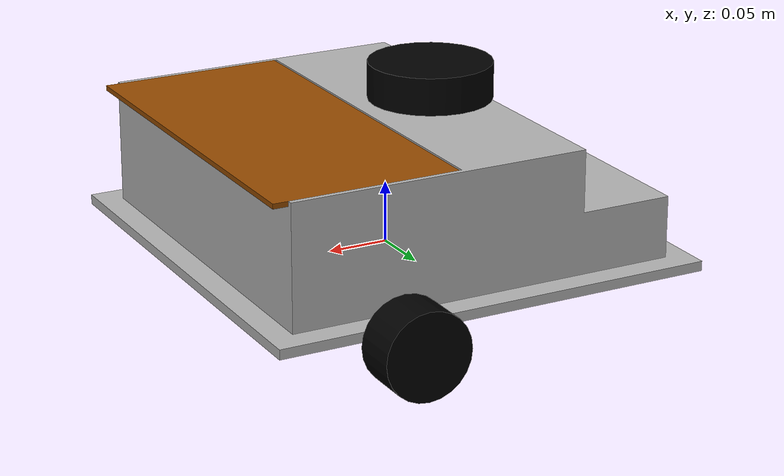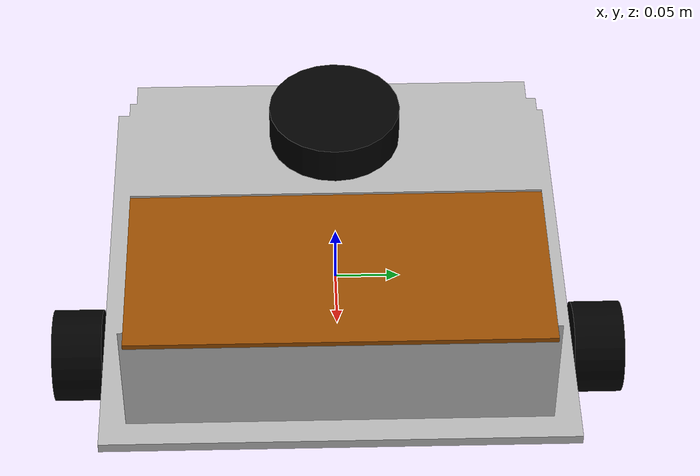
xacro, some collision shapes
<?xml version="1.0"?>
<robot xmlns:xacro="http://www.ros.org/wiki/xacro" name="libbot_bringup">

    <!-- Colours -->
    <xacro:include filename="materials.xacro" />

    <!-- Main robot structure -->
    <xacro:include filename="libbot_core.xacro" />

    <!-- Robot movement control -->
    <xacro:include filename="libbot_gazebo_control.xacro" />

    <!-- Sensors -->
    <gazebo>
        <plugin
            filename="gz-sim-sensors-system"
            name="gz::sim::systems::Sensors">
            <render_engine>ogre2</render_engine>
        </plugin>

        <plugin filename="gz-sim-imu-system"
                name="gz::sim::systems::Imu">
        </plugin>
    </gazebo>

    <!-- Lidar sensor -->
    <xacro:include filename="lidar.xacro" />

    <!-- IMU sensor -->
    <xacro:include filename="imu.xacro" />

</robot>

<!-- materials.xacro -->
<robot name="libbot_bringup" xmlns:xacro="http://www.ros.org/wiki/xacro">

    <!-- Material declarations -->
    <material name="black">
        <color rgba="0 0 0 1" />
    </material>

    <material name="sap">
        <color rgba="0.035 0.301 0.110 1.000" />
    </material>

    <material name="red">
        <color rgba="0.700 0.000 0.000 1.000" />
    </material>

    <material name="brown">
        <color rgba="0.588 0.294 0.000 1.000" />
    </material>

    <material name="silver">
        <color rgba="0.700 0.700 0.700 1.000" />
    </material>

</robot>

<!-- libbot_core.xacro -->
<robot xmlns:xacro="http://www.ros.org/wiki/xacro" name="libbot_bringup">

    <!-- Constants -->
    <xacro:property name="chassis_length" value="0.36" />
    <xacro:property name="chassis_breadth" value="0.36" />
    <xacro:property name="chassis_height" value="0.008" />

    <xacro:property name="payload_mass" value="4.0" />
    <xacro:property name="frame_mass" value="2.0" />

    <xacro:property name="wheel_length" value="0.038" />
    <xacro:property name="wheel_radius" value="0.035" />
    <xacro:property name="chassis_wheel_offset_height" value="0.01" />
    <xacro:property name="chassis_wheel_offset" value="0.1" />
    <xacro:property name="wheel_mass" value="0.1" />

    <xacro:property name="caster_pos_x" value="-0.1" />
    <xacro:property name="caster_pos_y" value="0.005" />

    <xacro:property name="door_length" value="${0.320-0.008}" />
    <xacro:property name="door_breadth" value="0.150" />
    <xacro:property name="door_height" value="0.004" />
    <xacro:property name="door_pos" value="${0.022} 0 ${0.11}" />
    <xacro:property name="door_joint_offset" value="${door_breadth/2}" />
    <xacro:property name="door_mass" value="0.050" />

    <!-- Wheel xacro -->
    <xacro:macro name="wheel" params="prefix reflect_x reflect_y">

        <link name="${prefix}_wheel_link">

            <visual>
                <geometry>
                    <cylinder radius="${wheel_radius}" length="${wheel_length}" />
                </geometry>
                <material name="black" />
            </visual>
            <collision>
                <geometry>
                    <cylinder radius="${wheel_radius}" length="${wheel_length}" />
                </geometry>
            </collision>
            <inertial>
                <mass value="${wheel_mass}" />
                <origin xyz="0 0 0" rpy="${pi/2} 0 0" />
                <inertia
                    ixx="${1/12*wheel_mass*(3*(wheel_radius*wheel_radius)+(wheel_length*wheel_length))}"
                    iyy="${1/12*wheel_mass*(3*(wheel_radius*wheel_radius)+(wheel_length*wheel_length))}"
                    izz="${1/2*wheel_mass*(wheel_radius*wheel_radius)}"
                    ixy="0.0" iyz="0.0" ixz="0.0" />
            </inertial>

        </link>

        <joint name="${prefix}_wheel_joint" type="continuous">

            <parent link="base_link" />
            <child link="${prefix}_wheel_link" />
            <origin
                xyz="${-reflect_x*((chassis_length/2)-chassis_wheel_offset)} ${-reflect_y*((chassis_breadth/2 + (wheel_length/2)))} 0.0"
                rpy="${pi/2} 0 0" />
            <axis xyz="0.0 0.0 -1.0" />
            <limit effort="0.56" velocity="12.56" />

        </joint>

    </xacro:macro>

    <!-- Frame -->
    <link name="base_footprint">
    </link>
    <link name="base_link">

        <visual>
            <origin
                xyz="${(chassis_length/2)} ${-(chassis_breadth/2)} ${chassis_height/2}"
                rpy="0 0 ${pi/2}" />
            <geometry>
                <mesh filename="file://$(find libbot_bringup)/urdf/meshes/chassis_frame.stl" />
            </geometry>
            <material name="silver" />
        </visual>
        <collision>
            <origin
                xyz="${(chassis_length/2)} ${-(chassis_breadth/2)} ${chassis_height/2}"
                rpy="0 0 ${pi/2}" />
            <geometry>
                <mesh filename="file://$(find libbot_bringup)/urdf/meshes/chassis_frame.stl" />
            </geometry>
        </collision>
        <inertial>
            <origin xyz="0 0 0.028" rpy="0 0 ${pi/2}" />
            <mass value="${frame_mass}" />
            <inertia ixx="0.023"
                iyy="0.025"
                izz="0.043"
                ixy="0.0" iyz="0.0" ixz="0.0" />
        </inertial>

    </link>
    <joint name="base_joint" type="fixed">

        <parent link="base_footprint" />
        <child link="base_link" />

    </joint>

    <!-- Door -->
    <link name="door_link">

        <visual>
            <origin xyz="0 -${door_joint_offset} 0" rpy="0 0 0" />
            <geometry>
                <box size="${door_length} ${door_breadth} ${door_height}" />
            </geometry>
            <material name="brown" />
        </visual>
        <collision>
            <origin xyz="0 -${door_joint_offset} 0" rpy="0 0 0" />
            <geometry>
                <box size="${door_length} ${door_breadth} ${door_height}" />
            </geometry>
        </collision>
        <inertial>
            <origin xyz="0 0 0" rpy="0 0 0" />
            <mass value="${door_mass}" />
            <inertia
                ixx="${1/12*door_mass*((door_length*door_length)+(door_breadth*door_breadth))}"
                iyy="${1/12*door_mass*((door_breadth*door_breadth)+(door_height*door_height))}"
                izz="${1/12*door_mass*((door_length*door_length)+(door_height*door_height))}"
                ixy="0.0" iyz="0.0" ixz="0.0" />
        </inertial>

    </link>
    <joint name="door_joint" type="revolute">

        <parent link="base_link" />
        <child link="door_link" />
        <origin
            xyz="${door_pos}"
            rpy="0 0 ${pi/2}" />
        <axis xyz="-1.0 0.0 0.0" />
        <limit upper="${pi/2}" lower="0.0" effort="10" velocity="1.0" />

    </joint>

    <!-- Wheels -->
    <xacro:wheel prefix="right" reflect_x="-1" reflect_y="1" />
    <xacro:wheel prefix="left" reflect_x="-1" reflect_y="-1" />

    <!-- Caster wheel -->
    <link name="caster_link">

        <visual>
            <origin
                xyz="0 0 0"
                rpy="0 0 0" />
            <geometry>
                <mesh filename="file://$(find libbot_bringup)/urdf/meshes/caster_wheel.stl" />
            </geometry>
            <material name="black" />
        </visual>
        <collision>
            <origin
                xyz="0.045 0.045 0"
                rpy="0 0 0" />
           <geometry>
                <sphere radius="0.035" />
            </geometry>
        </collision>

    </link>
    <joint name="caster_joint" type="fixed">

        <parent link="base_link" />
        <child link="caster_link" />
        <origin xyz="${caster_pos_x-0.04} ${-caster_pos_y-0.04} 0.0" rpy="0 0 0" />

    </joint>

</robot>

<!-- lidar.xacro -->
<robot xmlns:xacro="http://www.ros.org/wiki/xacro" name="libbot_description">

    <!-- Constants -->
    <xacro:property name="lidar_mass" value="0.03" />
    <xacro:property name="lidar_radius" value="0.05" />
    <xacro:property name="lidar_thickness" value="0.03" />

    <xacro:property name="lidar_pos_x" value="-0.04" />
    <xacro:property name="lidar_pos_y" value="0" />
    <xacro:property name="lidar_pos_z" value="0.13" />

    <!-- Model -->
    <link name="lidar_link">

        <visual>
            <geometry>
                <cylinder radius="${lidar_radius}" length="${lidar_thickness}" />
            </geometry>
            <material name="black" />
        </visual>
        <collision>
            <geometry>
                <cylinder radius="${lidar_radius}" length="${lidar_thickness}" />
            </geometry>
        </collision>
        <inertial>
            <origin xyz="0 0 0" rpy="0 0 0" />
            <mass value="${lidar_mass}" />
            <inertia
                ixx="${1/12*lidar_mass*(3*(lidar_radius*lidar_radius)+(lidar_thickness*lidar_thickness))}"
                iyy="${1/12*lidar_mass*(3*(lidar_radius*lidar_radius)+(lidar_thickness*lidar_thickness))}"
                izz="${1/2*lidar_mass*(lidar_radius*lidar_radius)}"
                ixy="0.0" iyz="0.0" ixz="0.0" />
        </inertial>

    </link>

    <joint name="lidar_joint" type="fixed">

        <parent link="base_link" />
        <child link="lidar_link" />
        <origin xyz="${lidar_pos_x} ${lidar_pos_y} ${lidar_pos_z}" rpy="0 0 0" />

    </joint>

    <!-- Plugin -->

    <gazebo reference="lidar_link">

        <sensor name="lidar" type="gpu_lidar">

            <pose> 0 0 0 0 0 0 </pose>
            <visualize>false</visualize>
            <update_rate>10</update_rate>
            <lidar>
                <scan>
                    <horizontal>
                        <samples>360</samples>
                        <min_angle>-${pi}</min_angle>
                        <max_angle>${pi}</max_angle>
                    </horizontal>
                </scan>
                <range>
                    <min>0.3</min>
                    <max>12</max>
                </range>
            </lidar>
            <topic>scan</topic>
            <gz_frame_id>lidar_link</gz_frame_id>

        </sensor>

    </gazebo>

</robot>

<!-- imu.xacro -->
<robot xmlns:xacro="http://www.ros.org/wiki/xacro" name="libbot_description">
    <!-- Constants -->
    <xacro:property name="imu_size" value="0.03 0.03 0.002" />
    <xacro:property name="imu_pos" value="0 0 0" />
    <xacro:property name="imu_rpy" value="0 0 0" />

    <!-- Model -->
    <link name="imu_link">

        <origin xyz="0 0 0" rpy="0 0 0"/>
        <visual>
            <material name="sap" />
            <geometry>
                <box size="${imu_size}" />
            </geometry>
        </visual>

    </link>
    <joint name="imu_joint" type="fixed">

        <parent link="base_link" />
        <child link="imu_link" />
        <origin xyz="${imu_pos}" rpy="${imu_rpy}" />

    </joint>

    <!-- Plugin -->
    <gazebo reference="imu_link">

        <sensor name="imu_sensor" type="imu">
            <always_on>true</always_on>
            <update_rate>30</update_rate>
            <visualize>true</visualize>
            <topic>imu</topic>
            <gz_frame_id>imu_link</gz_frame_id>
        </sensor>

    </gazebo>

</robot>
